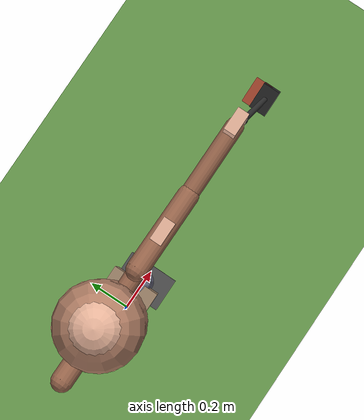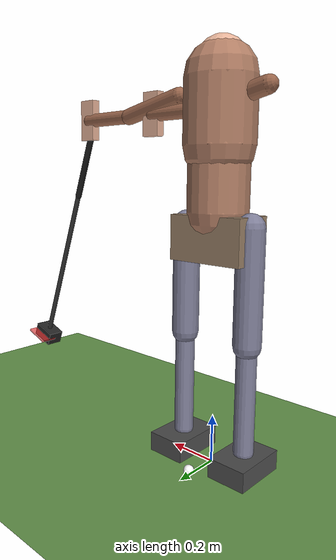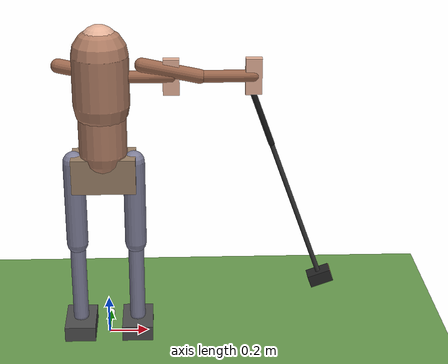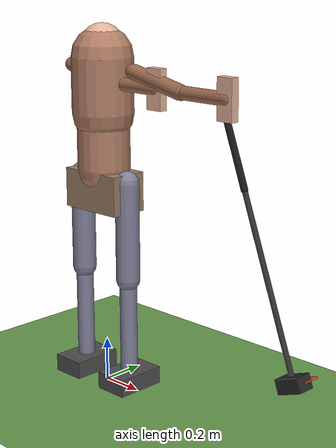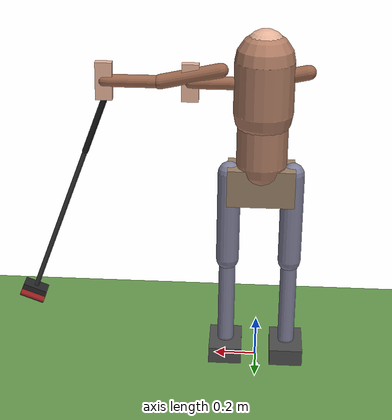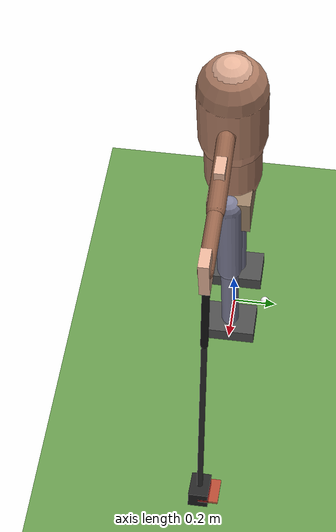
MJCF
<mujoco model="golf_full_body_swing">
  <option timestep="0.002" gravity="0 0 -9.80665" integrator="RK4"/>

  <compiler angle="radian" coordinate="local" inertiafromgeom="true"/>

  <visual>
    <global offwidth="1024" offheight="1024"/>
    <map znear="0.01" zfar="50"/>
    <headlight diffuse="0.8 0.8 0.8" ambient="0.3 0.3 0.3"/>
    <quality shadowsize="4096"/>
  </visual>

  <asset>
    <material name="torso_mat" rgba="0.7 0.5 0.4 1"/>
    <material name="arm_mat" rgba="0.6 0.4 0.3 1"/>
    <material name="leg_mat" rgba="0.5 0.5 0.6 1"/>
    <material name="club_mat" rgba="0.2 0.2 0.2 1"/>
    <material name="grip_mat" rgba="0.1 0.1 0.1 1"/>
    <material name="ground_mat" rgba="0.4 0.6 0.3 1"/>
  </asset>

  <worldbody>
    <!-- Ground plane -->
    <geom name="floor" type="plane" size="10 10 0.1" material="ground_mat"/>
    <light pos="0 0 3" dir="0 0 -1" directional="true"/>

    <!-- Camera views -->
    <camera name="side" pos="-5 -2 1.5" euler="0.15 0 0.35" mode="fixed"/>
    <camera name="front" pos="0 -5 1.5" euler="0.15 0 1.57" mode="fixed"/>
    <camera name="top" pos="0 0 6" euler="0 0 0" mode="fixed"/>
    <camera name="follow" pos="-3 -1 2" xyaxes="0 -1 0 1 0 2" mode="trackcom"/>

    <!-- Left foot (grounded) -->
    <body name="left_foot" pos="-0.15 0 0.05">
      <geom name="left_foot_geom" type="box" size="0.08 0.12 0.04"
            rgba="0.3 0.3 0.3 1" mass="1.0"/>

      <!-- Left ankle -->
      <body name="left_shin" pos="0 0 0.05">
        <joint name="left_ankle" type="hinge" axis="1 0 0"
               range="-0.8 0.8" damping="1.5"/>

        <!-- Left shin -->
        <geom name="left_shin_geom" type="capsule"
              fromto="0 0 0 0 0 0.43" size="0.04"
              material="leg_mat" mass="4.0"/>

        <!-- Left knee -->
        <body name="left_thigh" pos="0 0 0.43">
          <joint name="left_knee" type="hinge" axis="1 0 0"
                 range="-2.0 0" damping="2.0"/>

          <!-- Left thigh -->
          <geom name="left_thigh_geom" type="capsule"
                fromto="0 0 0 0 0 0.45" size="0.055"
                material="leg_mat" mass="8.0"/>

          <!-- Left hip connection point -->
          <site name="left_hip_site" pos="0 0 0.45"/>
        </body>
      </body>
    </body>

    <!-- Right foot (grounded) -->
    <body name="right_foot" pos="0.15 0 0.05">
      <geom name="right_foot_geom" type="box" size="0.08 0.12 0.04"
            rgba="0.3 0.3 0.3 1" mass="1.0"/>

      <!-- Right ankle -->
      <body name="right_shin" pos="0 0 0.05">
        <joint name="right_ankle" type="hinge" axis="1 0 0"
               range="-0.8 0.8" damping="1.5"/>

        <!-- Right shin -->
        <geom name="right_shin_geom" type="capsule"
              fromto="0 0 0 0 0 0.43" size="0.04"
              material="leg_mat" mass="4.0"/>

        <!-- Right knee -->
        <body name="right_thigh" pos="0 0 0.43">
          <joint name="right_knee" type="hinge" axis="1 0 0"
                 range="-2.0 0" damping="2.0"/>

          <!-- Right thigh -->
          <geom name="right_thigh_geom" type="capsule"
                fromto="0 0 0 0 0 0.45" size="0.055"
                material="leg_mat" mass="8.0"/>

          <!-- Right hip connection point -->
          <site name="right_hip_site" pos="0 0 0.45"/>
        </body>
      </body>
    </body>

    <!-- Pelvis (connected to both legs via equality constraints) -->
    <body name="pelvis" pos="0 0 0.93">
      <freejoint/>
      <geom name="pelvis_geom" type="box" size="0.16 0.09 0.09"
            rgba="0.6 0.5 0.4 1" mass="12"/>

      <!-- Torso connected via spine joints -->
      <body name="lower_torso" pos="0 0 0.1">
        <joint name="spine_bend" type="hinge" axis="1 0 0"
               range="-0.5 0.8" damping="3.0"/>

        <geom name="lower_torso_geom" type="capsule"
              fromto="0 0 0 0 0 0.25" size="0.12"
              material="torso_mat" mass="12"/>

        <body name="upper_torso" pos="0 0 0.25">
          <joint name="spine_rotation" type="hinge" axis="0 0 1"
                 range="-1.8 1.8" damping="3.0"/>

          <geom name="upper_torso_geom" type="capsule"
                fromto="0 0 0 0 0 0.25" size="0.14"
                material="torso_mat" mass="15"/>

          <!-- Head (for reference) -->
          <body name="head" pos="0 0 0.30">
            <geom name="head_geom" type="sphere" size="0.1"
                  rgba="0.9 0.7 0.6 1" mass="5"/>
          </body>

          <!-- Left shoulder -->
          <body name="left_shoulder" pos="-0.20 0 0.20">
            <joint name="left_shoulder_swing" type="hinge" axis="0 1 0"
                   range="-2.2 3.0" damping="1.5"/>
            <joint name="left_shoulder_lift" type="hinge" axis="1 0 0"
                   range="-1.5 1.5" damping="1.5"/>

            <geom name="left_upper_arm" type="capsule"
                  fromto="0 0 0 0.28 0 -0.06" size="0.035"
                  material="arm_mat" mass="2.5"/>

            <body name="left_elbow" pos="0.28 0 -0.06">
              <joint name="left_elbow" type="hinge" axis="0 1 0"
                     range="-2.5 0" damping="1.0"/>

              <geom name="left_forearm" type="capsule"
                    fromto="0 0 0 0.26 0 0" size="0.03"
                    material="arm_mat" mass="1.5"/>

              <body name="left_hand" pos="0.26 0 0">
                <joint name="left_wrist" type="hinge" axis="0 1 0"
                       range="-1.6 1.6" damping="0.5"/>
                <geom name="left_hand_geom" type="box"
                      size="0.04 0.02 0.09"
                      rgba="0.9 0.7 0.6 1" mass="0.4"/>
              </body>
            </body>
          </body>

          <!-- Right shoulder -->
          <body name="right_shoulder" pos="0.20 0 0.20">
            <joint name="right_shoulder_swing" type="hinge" axis="0 1 0"
                   range="-3.0 2.2" damping="1.5"/>
            <joint name="right_shoulder_lift" type="hinge" axis="1 0 0"
                   range="-1.5 1.5" damping="1.5"/>

            <geom name="right_upper_arm" type="capsule"
                  fromto="0 0 0 0.28 0 -0.06" size="0.035"
                  material="arm_mat" mass="2.5"/>

            <body name="right_elbow" pos="0.28 0 -0.06">
              <joint name="right_elbow" type="hinge" axis="0 1 0"
                     range="-2.5 0" damping="1.0"/>

              <geom name="right_forearm" type="capsule"
                    fromto="0 0 0 0.26 0 0" size="0.03"
                    material="arm_mat" mass="1.5"/>

              <body name="right_hand" pos="0.26 0 0">
                <joint name="right_wrist" type="hinge" axis="0 1 0"
                       range="-1.6 1.6" damping="0.5"/>
                <geom name="right_hand_geom" type="box"
                      size="0.04 0.02 0.09"
                      rgba="0.9 0.7 0.6 1" mass="0.4"/>

                <!-- Club attached to right hand -->
                <body name="club" pos="0 0 -0.09" euler="0 -0.35 0">
                  <joint name="club_wrist" type="hinge" axis="0 1 0"
                         range="-1.2 1.2" damping="0.3"/>

                  <geom name="club_grip" type="capsule"
                        fromto="0 0 0 0 0 -0.28" size="0.015"
                        material="grip_mat" mass="0.1"/>

                  <geom name="club_shaft" type="capsule"
                        fromto="0 0 -0.28 0 0 -1.08" size="0.012"
                        material="club_mat" mass="0.28"/>

                  <body name="clubhead" pos="0 0 -1.08">
                    <geom name="clubhead_geom" type="box"
                          size="0.06 0.04 0.032"
                          rgba="0.15 0.15 0.15 1" mass="0.2"/>
                    <geom name="clubface" type="box"
                          size="0.061 0.041 0.005"
                          pos="0 0.041 0"
                          rgba="0.9 0.2 0.2 0.7"/>
                  </body>
                </body>
              </body>
            </body>
          </body>
        </body>
      </body>
    </body>

    <!-- Golf ball -->
    <body name="ball" pos="0 0.15 0.021335">
      <freejoint/>
      <geom name="ball_geom" type="sphere" size="0.021335"
            rgba="1 1 1 1" mass="0.04593"
            condim="3" friction="0.8 0.005 0.0001"/>
    </body>
  </worldbody>

  <!-- Connect pelvis to legs -->
  <equality>
    <connect body1="pelvis" body2="left_thigh" anchor="0 0 0"/>
    <connect body1="pelvis" body2="right_thigh" anchor="0 0 0"/>
    <weld body1="left_hand" body2="club" relpose="0 0 -0.18 1 0 0 0"/>
  </equality>

  <actuator>
    <!-- Legs -->
    <motor name="left_ankle_motor" joint="left_ankle" gear="30"
           ctrllimited="true" ctrlrange="-40 40"/>
    <motor name="left_knee_motor" joint="left_knee" gear="80"
           ctrllimited="true" ctrlrange="-120 120"/>
    <motor name="right_ankle_motor" joint="right_ankle" gear="30"
           ctrllimited="true" ctrlrange="-40 40"/>
    <motor name="right_knee_motor" joint="right_knee" gear="80"
           ctrllimited="true" ctrlrange="-120 120"/>

    <!-- Torso -->
    <motor name="spine_bend_motor" joint="spine_bend" gear="120"
           ctrllimited="true" ctrlrange="-100 100"/>
    <motor name="spine_rotation_motor" joint="spine_rotation" gear="120"
           ctrllimited="true" ctrlrange="-100 100"/>

    <!-- Left arm -->
    <motor name="left_shoulder_swing_motor" joint="left_shoulder_swing" gear="50"
           ctrllimited="true" ctrlrange="-80 80"/>
    <motor name="left_shoulder_lift_motor" joint="left_shoulder_lift" gear="50"
           ctrllimited="true" ctrlrange="-80 80"/>
    <motor name="left_elbow_motor" joint="left_elbow" gear="40"
           ctrllimited="true" ctrlrange="-60 60"/>
    <motor name="left_wrist_motor" joint="left_wrist" gear="20"
           ctrllimited="true" ctrlrange="-30 30"/>

    <!-- Right arm -->
    <motor name="right_shoulder_swing_motor" joint="right_shoulder_swing" gear="50"
           ctrllimited="true" ctrlrange="-80 80"/>
    <motor name="right_shoulder_lift_motor" joint="right_shoulder_lift" gear="50"
           ctrllimited="true" ctrlrange="-80 80"/>
    <motor name="right_elbow_motor" joint="right_elbow" gear="40"
           ctrllimited="true" ctrlrange="-60 60"/>
    <motor name="right_wrist_motor" joint="right_wrist" gear="20"
           ctrllimited="true" ctrlrange="-30 30"/>

    <!-- Club -->
    <motor name="club_wrist_motor" joint="club_wrist" gear="15"
           ctrllimited="true" ctrlrange="-20 20"/>
  </actuator>
</mujoco>
